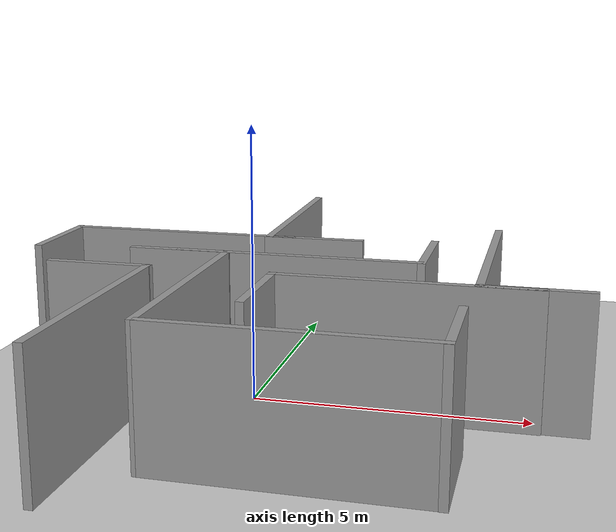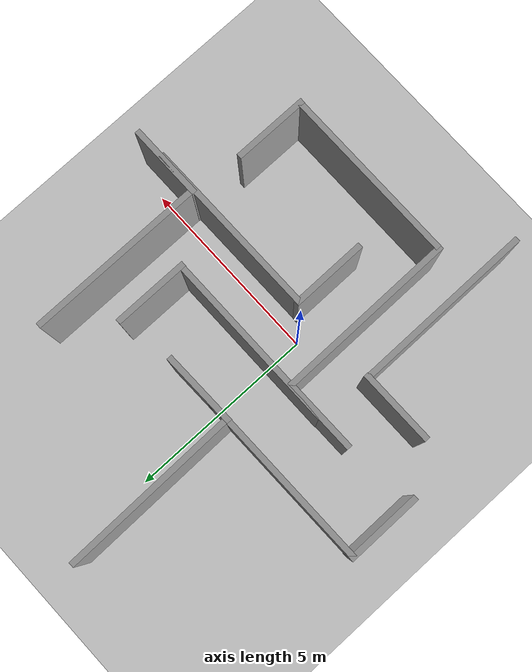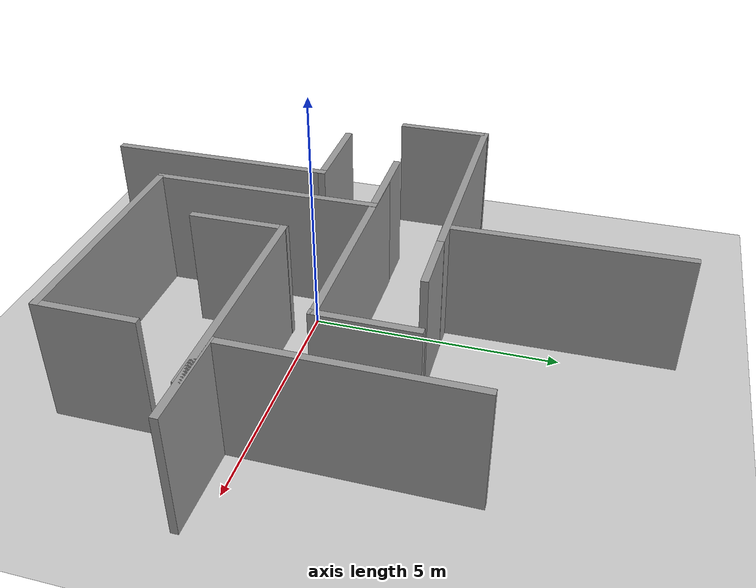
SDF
<sdf version="1.7">
 <world name="default">
  <model name="ground_plane">
   <static>1</static>
   <link name="link">
    <collision name="collision">
     <geometry><plane><normal>0 0 1</normal><size>100 100</size></plane></geometry>
     <surface><friction><ode><mu>100</mu><mu2>50</mu2></ode></friction></surface>
    </collision>
    <visual name="visual">
     <cast_shadows>0</cast_shadows>
     <geometry><plane><normal>0 0 1</normal><size>100 100</size></plane></geometry>
     <material>
      <script><uri>file://media/materials/scripts/gazebo.material</uri><name>Gazebo/Grey</name></script>
     </material>
    </visual>
   </link>
  </model>
  <light name="sun" type="directional">
   <pose>0 0 10 0 -0 0</pose>
   <diffuse>0.8 0.8 0.8 1</diffuse>
   <specular>0.2 0.2 0.2 1</specular>
   <attenuation>
    <range>1000</range>
    <constant>0.9</constant>
    <linear>0.01</linear>
    <quadratic>0.001</quadratic>
   </attenuation>
   <direction>-0.5 0.1 -0.9</direction>
   <spot><inner_angle>0</inner_angle><outer_angle>0</outer_angle><falloff>0</falloff></spot>
  </light>
  <scene><shadows>0</shadows><ambient>0.4 0.4 0.4 1</ambient><background>0.7 0.7 0.7 1</background></scene>
  <physics type="ode">
   <real_time_update_rate>1000</real_time_update_rate>
   <max_step_size>0.001</max_step_size>
   <real_time_factor>1</real_time_factor>
   <ode>
    <solver>
     <type>quick</type>
     <iters>150</iters>
     <precon_iters>0</precon_iters>
     <sor>1.4</sor>
     <use_dynamic_moi_rescaling>1</use_dynamic_moi_rescaling>
    </solver>
    <constraints>
     <cfm>1e-05</cfm>
     <erp>0.2</erp>
     <contact_max_correcting_vel>2000</contact_max_correcting_vel>
     <contact_surface_layer>0.01</contact_surface_layer>
    </constraints>
   </ode>
  </physics>
  <gravity>0 0 -9.8</gravity>
  <magnetic_field>6e-06 2.3e-05 -4.2e-05</magnetic_field>
  <atmosphere type="adiabatic"/>
  <audio><device>default</device></audio>
  <spherical_coordinates>
   <surface_model>EARTH_WGS84</surface_model>
   <latitude_deg>0</latitude_deg>
   <longitude_deg>0</longitude_deg>
   <elevation>0</elevation>
   <heading_deg>0</heading_deg>
  </spherical_coordinates>
  <model name="L">
   <pose>0.579665 1.36376 0 0 -0 0</pose>
   <link name="Wall_0">
    <collision name="Wall_0_Collision">
     <geometry><box><size>4.75 0.15 2.5</size></box></geometry>
     <pose>0 0 1.25 0 -0 0</pose>
    </collision>
    <visual name="Wall_0_Visual">
     <pose>0 0 1.25 0 -0 0</pose>
     <geometry><box><size>4.75 0.15 2.5</size></box></geometry>
     <material>
      <script><uri>file://media/materials/scripts/gazebo.material</uri><name>Gazebo/Grey</name></script>
      <ambient>1 1 1 1</ambient>
     </material>
     <meta><layer>0</layer></meta>
    </visual>
    <pose>-0 -0.3775 0 0 -0 0</pose>
   </link>
   <link name="Wall_1">
    <collision name="Wall_1_Collision">
     <geometry><box><size>2 0.15 2.5</size></box></geometry>
     <pose>0 0 1.25 0 -0 0</pose>
    </collision>
    <visual name="Wall_1_Visual">
     <pose>0 0 1.25 0 -0 0</pose>
     <geometry><box><size>2 0.15 2.5</size></box></geometry>
     <material>
      <script><uri>file://media/materials/scripts/gazebo.material</uri><name>Gazebo/Grey</name></script>
      <ambient>1 1 1 1</ambient>
     </material>
     <meta><layer>0</layer></meta>
    </visual>
    <pose>2.3 0.5375 0 0 -0 1.5708</pose>
   </link>
   <static>1</static>
  </model>
  <model name="L_0">
   <pose>-1.17882 -1.32314 0 0 -0 1.57757</pose>
   <link name="Wall_0">
    <collision name="Wall_0_Collision">
     <geometry><box><size>4.75 0.15 2.5</size></box></geometry>
     <pose>0 0 1.25 0 -0 0</pose>
    </collision>
    <visual name="Wall_0_Visual">
     <pose>0 0 1.25 0 -0 0</pose>
     <geometry><box><size>4.75 0.15 2.5</size></box></geometry>
     <material>
      <script><uri>file://media/materials/scripts/gazebo.material</uri><name>Gazebo/Grey</name></script>
      <ambient>1 1 1 1</ambient>
     </material>
     <meta><layer>0</layer></meta>
    </visual>
    <pose>-0 -0.3775 0 0 -0 0</pose>
   </link>
   <link name="Wall_1">
    <collision name="Wall_1_Collision">
     <geometry><box><size>2 0.15 2.5</size></box></geometry>
     <pose>0 0 1.25 0 -0 0</pose>
    </collision>
    <visual name="Wall_1_Visual">
     <pose>0 0 1.25 0 -0 0</pose>
     <geometry><box><size>2 0.15 2.5</size></box></geometry>
     <material>
      <script><uri>file://media/materials/scripts/gazebo.material</uri><name>Gazebo/Grey</name></script>
      <ambient>1 1 1 1</ambient>
     </material>
     <meta><layer>0</layer></meta>
    </visual>
    <pose>2.3 0.5375 0 0 -0 1.5708</pose>
   </link>
   <static>1</static>
  </model>
  <model name="L_1">
   <pose>-0.065176 4.85518 0 0 0 -1.5558</pose>
   <link name="Wall_0">
    <collision name="Wall_0_Collision">
     <geometry><box><size>4.75 0.15 2.5</size></box></geometry>
     <pose>0 0 1.25 0 -0 0</pose>
    </collision>
    <visual name="Wall_0_Visual">
     <pose>0 0 1.25 0 -0 0</pose>
     <geometry><box><size>4.75 0.15 2.5</size></box></geometry>
     <material>
      <script><uri>file://media/materials/scripts/gazebo.material</uri><name>Gazebo/Grey</name></script>
      <ambient>1 1 1 1</ambient>
     </material>
     <meta><layer>0</layer></meta>
    </visual>
    <pose>-0 -0.3775 0 0 -0 0</pose>
   </link>
   <link name="Wall_1">
    <collision name="Wall_1_Collision">
     <geometry><box><size>2 0.15 2.5</size></box></geometry>
     <pose>0 0 1.25 0 -0 0</pose>
    </collision>
    <visual name="Wall_1_Visual">
     <pose>0 0 1.25 0 -0 0</pose>
     <geometry><box><size>2 0.15 2.5</size></box></geometry>
     <material>
      <script><uri>file://media/materials/scripts/gazebo.material</uri><name>Gazebo/Grey</name></script>
      <ambient>1 1 1 1</ambient>
     </material>
     <meta><layer>0</layer></meta>
    </visual>
    <pose>2.3 0.5375 0 0 -0 1.5708</pose>
   </link>
   <static>1</static>
  </model>
  <model name="L_2">
   <pose>-2.23127 2.17067 0 0 0 -3.13604</pose>
   <link name="Wall_0">
    <collision name="Wall_0_Collision">
     <geometry><box><size>4.75 0.15 2.5</size></box></geometry>
     <pose>0 0 1.25 0 -0 0</pose>
    </collision>
    <visual name="Wall_0_Visual">
     <pose>0 0 1.25 0 -0 0</pose>
     <geometry><box><size>4.75 0.15 2.5</size></box></geometry>
     <material>
      <script><uri>file://media/materials/scripts/gazebo.material</uri><name>Gazebo/Grey</name></script>
      <ambient>1 1 1 1</ambient>
     </material>
     <meta><layer>0</layer></meta>
    </visual>
    <pose>-0 -0.3775 0 0 -0 0</pose>
   </link>
   <link name="Wall_1">
    <collision name="Wall_1_Collision">
     <geometry><box><size>2 0.15 2.5</size></box></geometry>
     <pose>0 0 1.25 0 -0 0</pose>
    </collision>
    <visual name="Wall_1_Visual">
     <pose>0 0 1.25 0 -0 0</pose>
     <geometry><box><size>2 0.15 2.5</size></box></geometry>
     <material>
      <script><uri>file://media/materials/scripts/gazebo.material</uri><name>Gazebo/Grey</name></script>
      <ambient>1 1 1 1</ambient>
     </material>
     <meta><layer>0</layer></meta>
    </visual>
    <pose>2.3 0.5375 0 0 -0 1.5708</pose>
   </link>
   <static>1</static>
  </model>
  <model name="L_3">
   <pose>-2.22411 -2.7299 0 0 -0 1.57432</pose>
   <link name="Wall_0">
    <collision name="Wall_0_Collision">
     <geometry><box><size>4.75 0.15 2.5</size></box></geometry>
     <pose>0 0 1.25 0 -0 0</pose>
    </collision>
    <visual name="Wall_0_Visual">
     <pose>0 0 1.25 0 -0 0</pose>
     <geometry><box><size>4.75 0.15 2.5</size></box></geometry>
     <material>
      <script><uri>file://media/materials/scripts/gazebo.material</uri><name>Gazebo/Grey</name></script>
      <ambient>1 1 1 1</ambient>
     </material>
     <meta><layer>0</layer></meta>
    </visual>
    <pose>-0 -0.3775 0 0 -0 0</pose>
   </link>
   <link name="Wall_1">
    <collision name="Wall_1_Collision">
     <geometry><box><size>2 0.15 2.5</size></box></geometry>
     <pose>0 0 1.25 0 -0 0</pose>
    </collision>
    <visual name="Wall_1_Visual">
     <pose>0 0 1.25 0 -0 0</pose>
     <geometry><box><size>2 0.15 2.5</size></box></geometry>
     <material>
      <script><uri>file://media/materials/scripts/gazebo.material</uri><name>Gazebo/Grey</name></script>
      <ambient>1 1 1 1</ambient>
     </material>
     <meta><layer>0</layer></meta>
    </visual>
    <pose>2.3 0.5375 0 0 -0 1.5708</pose>
   </link>
   <static>1</static>
  </model>
  <model name="L_4">
   <pose>1.5936 -3.24895 0 0 -0 0</pose>
   <link name="Wall_0">
    <collision name="Wall_0_Collision">
     <geometry><box><size>4.75 0.15 2.5</size></box></geometry>
     <pose>0 0 1.25 0 -0 0</pose>
    </collision>
    <visual name="Wall_0_Visual">
     <pose>0 0 1.25 0 -0 0</pose>
     <geometry><box><size>4.75 0.15 2.5</size></box></geometry>
     <material>
      <script><uri>file://media/materials/scripts/gazebo.material</uri><name>Gazebo/Grey</name></script>
      <ambient>1 1 1 1</ambient>
     </material>
     <meta><layer>0</layer></meta>
    </visual>
    <pose>-0 -0.3775 0 0 -0 0</pose>
   </link>
   <link name="Wall_1">
    <collision name="Wall_1_Collision">
     <geometry><box><size>2 0.15 2.5</size></box></geometry>
     <pose>0 0 1.25 0 -0 0</pose>
    </collision>
    <visual name="Wall_1_Visual">
     <pose>0 0 1.25 0 -0 0</pose>
     <geometry><box><size>2 0.15 2.5</size></box></geometry>
     <material>
      <script><uri>file://media/materials/scripts/gazebo.material</uri><name>Gazebo/Grey</name></script>
      <ambient>1 1 1 1</ambient>
     </material>
     <meta><layer>0</layer></meta>
    </visual>
    <pose>2.3 0.5375 0 0 -0 1.5708</pose>
   </link>
   <static>1</static>
  </model>
  <model name="L_5">
   <pose>4.40676 1.91215 0 0 0 -1.57147</pose>
   <link name="Wall_0">
    <collision name="Wall_0_Collision">
     <geometry><box><size>4.75 0.15 2.5</size></box></geometry>
     <pose>0 0 1.25 0 -0 0</pose>
    </collision>
    <visual name="Wall_0_Visual">
     <pose>0 0 1.25 0 -0 0</pose>
     <geometry><box><size>4.75 0.15 2.5</size></box></geometry>
     <material>
      <script><uri>file://media/materials/scripts/gazebo.material</uri><name>Gazebo/Grey</name></script>
      <ambient>1 1 1 1</ambient>
     </material>
     <meta><layer>0</layer></meta>
    </visual>
    <pose>-0 -0.3775 0 0 -0 0</pose>
   </link>
   <link name="Wall_1">
    <collision name="Wall_1_Collision">
     <geometry><box><size>2 0.15 2.5</size></box></geometry>
     <pose>0 0 1.25 0 -0 0</pose>
    </collision>
    <visual name="Wall_1_Visual">
     <pose>0 0 1.25 0 -0 0</pose>
     <geometry><box><size>2 0.15 2.5</size></box></geometry>
     <material>
      <script><uri>file://media/materials/scripts/gazebo.material</uri><name>Gazebo/Grey</name></script>
      <ambient>1 1 1 1</ambient>
     </material>
     <meta><layer>0</layer></meta>
    </visual>
    <pose>2.3 0.5375 0 0 -0 1.5708</pose>
   </link>
   <static>1</static>
  </model>
  <model name="L_6">
   <pose>2.77269 -0.81089 0 0 0 -3.13777</pose>
   <link name="Wall_0">
    <collision name="Wall_0_Collision">
     <geometry><box><size>4.75 0.15 2.5</size></box></geometry>
     <pose>0 0 1.25 0 -0 0</pose>
    </collision>
    <visual name="Wall_0_Visual">
     <pose>0 0 1.25 0 -0 0</pose>
     <geometry><box><size>4.75 0.15 2.5</size></box></geometry>
     <material>
      <script><uri>file://media/materials/scripts/gazebo.material</uri><name>Gazebo/Grey</name></script>
      <ambient>1 1 1 1</ambient>
     </material>
     <meta><layer>0</layer></meta>
    </visual>
    <pose>-0 -0.3775 0 0 -0 0</pose>
   </link>
   <link name="Wall_1">
    <collision name="Wall_1_Collision">
     <geometry><box><size>2 0.15 2.5</size></box></geometry>
     <pose>0 0 1.25 0 -0 0</pose>
    </collision>
    <visual name="Wall_1_Visual">
     <pose>0 0 1.25 0 -0 0</pose>
     <geometry><box><size>2 0.15 2.5</size></box></geometry>
     <material>
      <script><uri>file://media/materials/scripts/gazebo.material</uri><name>Gazebo/Grey</name></script>
      <ambient>1 1 1 1</ambient>
     </material>
     <meta><layer>0</layer></meta>
    </visual>
    <pose>2.3 0.5375 0 0 -0 1.5708</pose>
   </link>
   <static>1</static>
  </model>
 </world>
</sdf>
